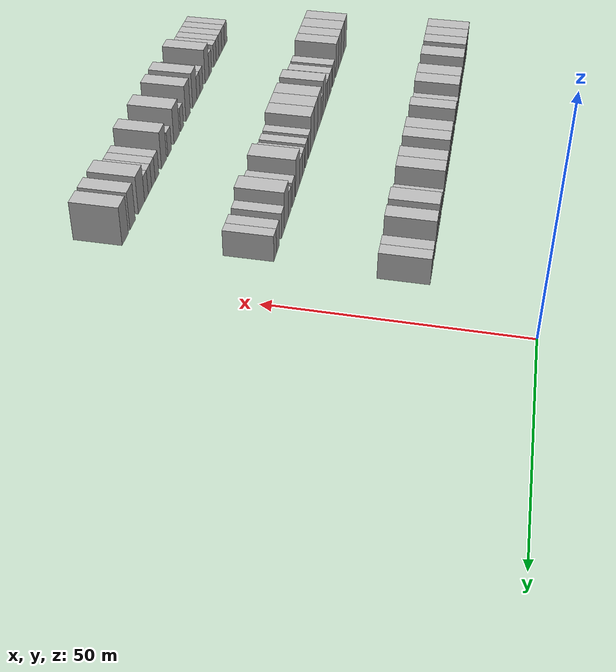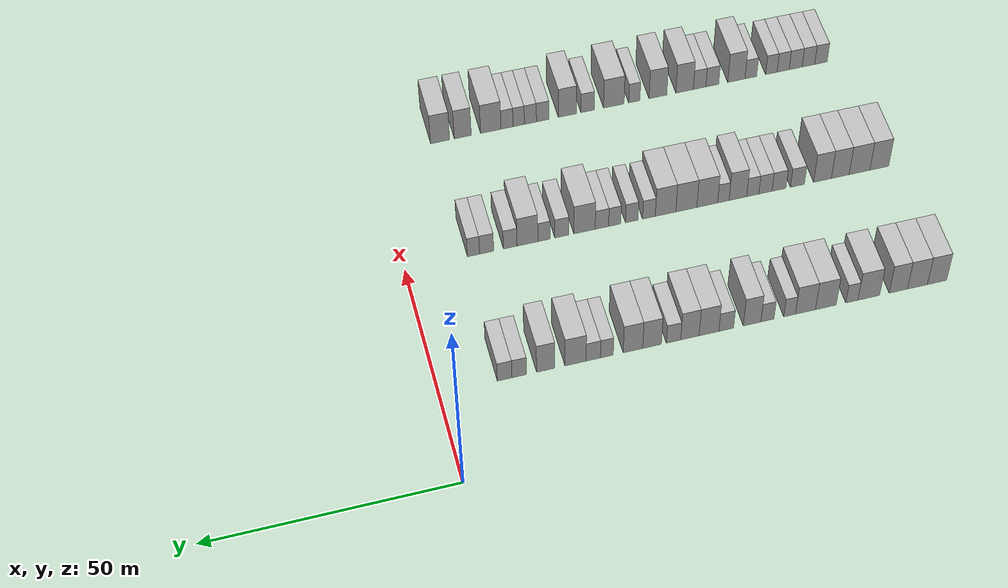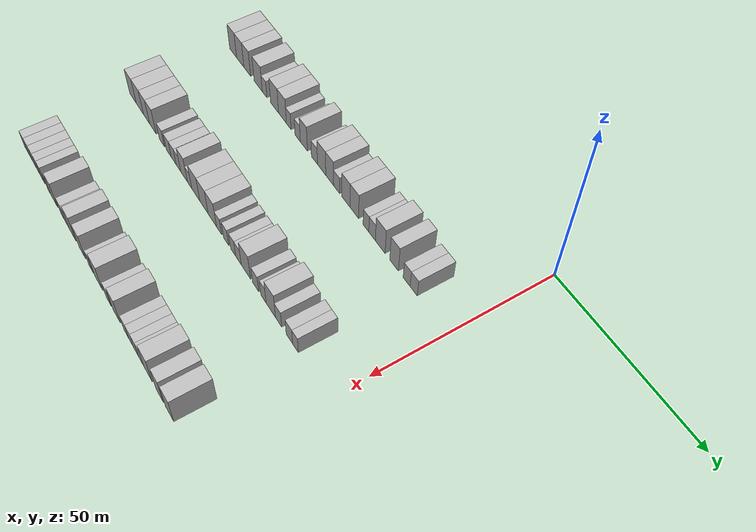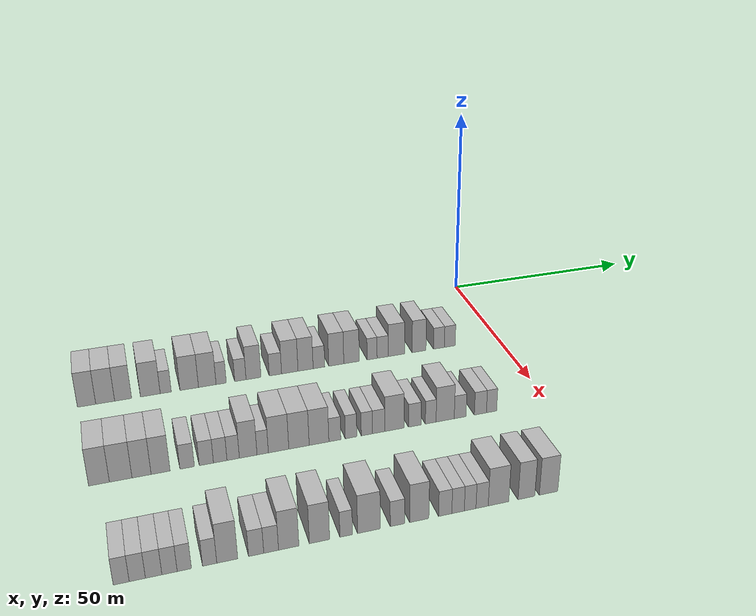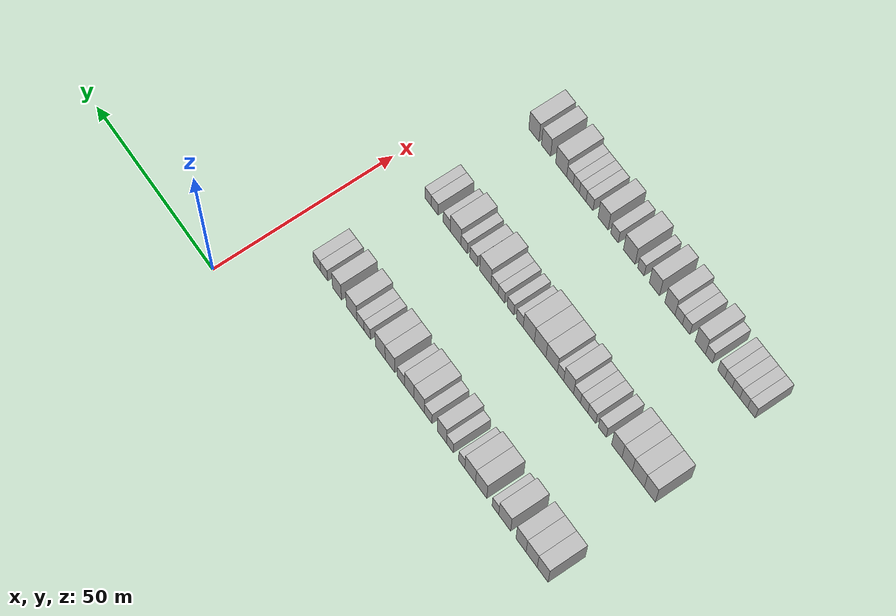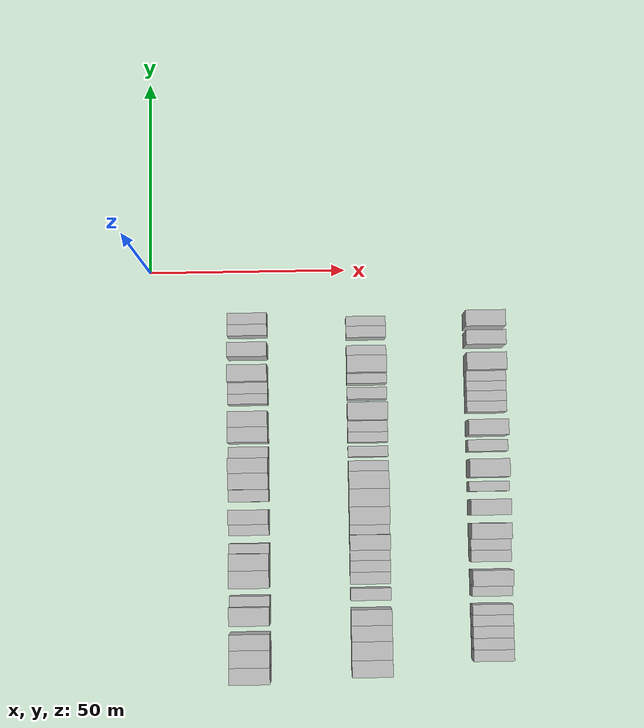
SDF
<sdf version="1.6">
 <world name="default">
  <model name="building_45">
   <static>1</static>
   <pose>25.0000 -101.2414 0 0.000000 0.000000 0.000000</pose>
   <link name="link">
    <pose>0 0 4.50 0 0 0</pose>
    <collision name="collision"><geometry><box><size>10.0000 4.0409 9.0000</size></box></geometry></collision>
    <visual name="visual">
     <cast_shadows>0</cast_shadows>
     <geometry><box><size>10.0000 4.0409 9.0000</size></box></geometry>
     <material>
      <script>
       <uri>model://HANNAS_wall/materials/scripts</uri>
       <uri>model://HANNAS_wall/materials/textures</uri>
       <name>vrc/HANNAS_wall</name>
      </script>
     </material>
    </visual>
   </link>
  </model>
  <model name="building_46">
   <static>1</static>
   <pose>25.0000 -97.1196 0 0.000000 0.000000 0.000000</pose>
   <link name="link">
    <pose>0 0 4.50 0 0 0</pose>
    <collision name="collision"><geometry><box><size>10.0000 4.2027 9.0000</size></box></geometry></collision>
    <visual name="visual">
     <cast_shadows>0</cast_shadows>
     <geometry><box><size>10.0000 4.2027 9.0000</size></box></geometry>
     <material>
      <script>
       <uri>model://HANNAS_wall/materials/scripts</uri>
       <uri>model://HANNAS_wall/materials/textures</uri>
       <name>vrc/HANNAS_wall</name>
      </script>
     </material>
    </visual>
   </link>
  </model>
  <model name="building_47">
   <static>1</static>
   <pose>25.0000 -93.1162 0 0.000000 0.000000 0.000000</pose>
   <link name="link">
    <pose>0 0 4.50 0 0 0</pose>
    <collision name="collision"><geometry><box><size>10.0000 3.8041 9.0000</size></box></geometry></collision>
    <visual name="visual">
     <cast_shadows>0</cast_shadows>
     <geometry><box><size>10.0000 3.8041 9.0000</size></box></geometry>
     <material>
      <script>
       <uri>model://HANNAS_wall/materials/scripts</uri>
       <uri>model://HANNAS_wall/materials/textures</uri>
       <name>vrc/HANNAS_wall</name>
      </script>
     </material>
    </visual>
   </link>
  </model>
  <model name="building_48">
   <static>1</static>
   <pose>25.0000 -86.9650 0 0.000000 0.000000 0.000000</pose>
   <link name="link">
    <pose>0 0 4.50 0 0 0</pose>
    <collision name="collision"><geometry><box><size>10.0000 4.4983 9.0000</size></box></geometry></collision>
    <visual name="visual">
     <cast_shadows>0</cast_shadows>
     <geometry><box><size>10.0000 4.4983 9.0000</size></box></geometry>
     <material>
      <script>
       <uri>model://HANNAS_wall/materials/scripts</uri>
       <uri>model://HANNAS_wall/materials/textures</uri>
       <name>vrc/HANNAS_wall</name>
      </script>
     </material>
    </visual>
   </link>
  </model>
  <model name="building_49">
   <static>1</static>
   <pose>25.0000 -83.4421 0 0.000000 0.000000 0.000000</pose>
   <link name="link">
    <pose>0 0 3.00 0 0 0</pose>
    <collision name="collision"><geometry><box><size>10.0000 2.5475 6.0000</size></box></geometry></collision>
    <visual name="visual">
     <cast_shadows>0</cast_shadows>
     <geometry><box><size>10.0000 2.5475 6.0000</size></box></geometry>
     <material>
      <script>
       <uri>model://HANNAS_wall/materials/scripts</uri>
       <uri>model://HANNAS_wall/materials/textures</uri>
       <name>vrc/HANNAS_wall</name>
      </script>
     </material>
    </visual>
   </link>
  </model>
  <model name="building_50">
   <static>1</static>
   <pose>25.0000 -78.0177 0 0.000000 0.000000 0.000000</pose>
   <link name="link">
    <pose>0 0 4.50 0 0 0</pose>
    <collision name="collision"><geometry><box><size>10.0000 4.3014 9.0000</size></box></geometry></collision>
    <visual name="visual">
     <cast_shadows>0</cast_shadows>
     <geometry><box><size>10.0000 4.3014 9.0000</size></box></geometry>
     <material>
      <script>
       <uri>model://HANNAS_wall/materials/scripts</uri>
       <uri>model://HANNAS_wall/materials/textures</uri>
       <name>vrc/HANNAS_wall</name>
      </script>
     </material>
    </visual>
   </link>
  </model>
  <model name="building_51">
   <static>1</static>
   <pose>25.0000 -73.8058 0 0.000000 0.000000 0.000000</pose>
   <link name="link">
    <pose>0 0 4.50 0 0 0</pose>
    <collision name="collision"><geometry><box><size>10.0000 4.1225 9.0000</size></box></geometry></collision>
    <visual name="visual">
     <cast_shadows>0</cast_shadows>
     <geometry><box><size>10.0000 4.1225 9.0000</size></box></geometry>
     <material>
      <script>
       <uri>model://HANNAS_wall/materials/scripts</uri>
       <uri>model://HANNAS_wall/materials/textures</uri>
       <name>vrc/HANNAS_wall</name>
      </script>
     </material>
    </visual>
   </link>
  </model>
  <model name="building_52">
   <static>1</static>
   <pose>25.0000 -70.5336 0 0.000000 0.000000 0.000000</pose>
   <link name="link">
    <pose>0 0 3.00 0 0 0</pose>
    <collision name="collision"><geometry><box><size>10.0000 2.4218 6.0000</size></box></geometry></collision>
    <visual name="visual">
     <cast_shadows>0</cast_shadows>
     <geometry><box><size>10.0000 2.4218 6.0000</size></box></geometry>
     <material>
      <script>
       <uri>model://HANNAS_wall/materials/scripts</uri>
       <uri>model://HANNAS_wall/materials/textures</uri>
       <name>vrc/HANNAS_wall</name>
      </script>
     </material>
    </visual>
   </link>
  </model>
  <model name="building_53">
   <static>1</static>
   <pose>25.0000 -65.9738 0 0.000000 0.000000 0.000000</pose>
   <link name="link">
    <pose>0 0 3.00 0 0 0</pose>
    <collision name="collision"><geometry><box><size>10.0000 2.6979 6.0000</size></box></geometry></collision>
    <visual name="visual">
     <cast_shadows>0</cast_shadows>
     <geometry><box><size>10.0000 2.6979 6.0000</size></box></geometry>
     <material>
      <script>
       <uri>model://HANNAS_wall/materials/scripts</uri>
       <uri>model://HANNAS_wall/materials/textures</uri>
       <name>vrc/HANNAS_wall</name>
      </script>
     </material>
    </visual>
   </link>
  </model>
  <model name="building_54">
   <static>1</static>
   <pose>25.0000 -62.8245 0 0.000000 0.000000 0.000000</pose>
   <link name="link">
    <pose>0 0 4.50 0 0 0</pose>
    <collision name="collision"><geometry><box><size>10.0000 3.6007 9.0000</size></box></geometry></collision>
    <visual name="visual">
     <cast_shadows>0</cast_shadows>
     <geometry><box><size>10.0000 3.6007 9.0000</size></box></geometry>
     <material>
      <script>
       <uri>model://HANNAS_wall/materials/scripts</uri>
       <uri>model://HANNAS_wall/materials/textures</uri>
       <name>vrc/HANNAS_wall</name>
      </script>
     </material>
    </visual>
   </link>
  </model>
  <model name="building_55">
   <static>1</static>
   <pose>25.0000 -57.5252 0 0.000000 0.000000 0.000000</pose>
   <link name="link">
    <pose>0 0 3.00 0 0 0</pose>
    <collision name="collision"><geometry><box><size>10.0000 2.9978 6.0000</size></box></geometry></collision>
    <visual name="visual">
     <cast_shadows>0</cast_shadows>
     <geometry><box><size>10.0000 2.9978 6.0000</size></box></geometry>
     <material>
      <script>
       <uri>model://HANNAS_wall/materials/scripts</uri>
       <uri>model://HANNAS_wall/materials/textures</uri>
       <name>vrc/HANNAS_wall</name>
      </script>
     </material>
    </visual>
   </link>
  </model>
  <model name="building_56">
   <static>1</static>
   <pose>25.0000 -54.0114 0 0.000000 0.000000 0.000000</pose>
   <link name="link">
    <pose>0 0 4.50 0 0 0</pose>
    <collision name="collision"><geometry><box><size>10.0000 4.0298 9.0000</size></box></geometry></collision>
    <visual name="visual">
     <cast_shadows>0</cast_shadows>
     <geometry><box><size>10.0000 4.0298 9.0000</size></box></geometry>
     <material>
      <script>
       <uri>model://HANNAS_wall/materials/scripts</uri>
       <uri>model://HANNAS_wall/materials/textures</uri>
       <name>vrc/HANNAS_wall</name>
      </script>
     </material>
    </visual>
   </link>
  </model>
  <model name="building_57">
   <static>1</static>
   <pose>25.0000 -50.1268 0 0.000000 0.000000 0.000000</pose>
   <link name="link">
    <pose>0 0 4.50 0 0 0</pose>
    <collision name="collision"><geometry><box><size>10.0000 3.7393 9.0000</size></box></geometry></collision>
    <visual name="visual">
     <cast_shadows>0</cast_shadows>
     <geometry><box><size>10.0000 3.7393 9.0000</size></box></geometry>
     <material>
      <script>
       <uri>model://HANNAS_wall/materials/scripts</uri>
       <uri>model://HANNAS_wall/materials/textures</uri>
       <name>vrc/HANNAS_wall</name>
      </script>
     </material>
    </visual>
   </link>
  </model>
  <model name="building_58">
   <static>1</static>
   <pose>25.0000 -46.8069 0 0.000000 0.000000 0.000000</pose>
   <link name="link">
    <pose>0 0 3.00 0 0 0</pose>
    <collision name="collision"><geometry><box><size>10.0000 2.9005 6.0000</size></box></geometry></collision>
    <visual name="visual">
     <cast_shadows>0</cast_shadows>
     <geometry><box><size>10.0000 2.9005 6.0000</size></box></geometry>
     <material>
      <script>
       <uri>model://HANNAS_wall/materials/scripts</uri>
       <uri>model://HANNAS_wall/materials/textures</uri>
       <name>vrc/HANNAS_wall</name>
      </script>
     </material>
    </visual>
   </link>
  </model>
  <model name="building_59">
   <static>1</static>
   <pose>25.0000 -42.4667 0 0.000000 0.000000 0.000000</pose>
   <link name="link">
    <pose>0 0 4.50 0 0 0</pose>
    <collision name="collision"><geometry><box><size>10.0000 3.7800 9.0000</size></box></geometry></collision>
    <visual name="visual">
     <cast_shadows>0</cast_shadows>
     <geometry><box><size>10.0000 3.7800 9.0000</size></box></geometry>
     <material>
      <script>
       <uri>model://HANNAS_wall/materials/scripts</uri>
       <uri>model://HANNAS_wall/materials/textures</uri>
       <name>vrc/HANNAS_wall</name>
      </script>
     </material>
    </visual>
   </link>
  </model>
  <model name="building_60">
   <static>1</static>
   <pose>25.0000 -38.6125 0 0.000000 0.000000 0.000000</pose>
   <link name="link">
    <pose>0 0 4.50 0 0 0</pose>
    <collision name="collision"><geometry><box><size>10.0000 3.9283 9.0000</size></box></geometry></collision>
    <visual name="visual">
     <cast_shadows>0</cast_shadows>
     <geometry><box><size>10.0000 3.9283 9.0000</size></box></geometry>
     <material>
      <script>
       <uri>model://HANNAS_wall/materials/scripts</uri>
       <uri>model://HANNAS_wall/materials/textures</uri>
       <name>vrc/HANNAS_wall</name>
      </script>
     </material>
    </visual>
   </link>
  </model>
  <model name="building_61">
   <static>1</static>
   <pose>25.0000 -33.3625 0 0.000000 0.000000 0.000000</pose>
   <link name="link">
    <pose>0 0 3.00 0 0 0</pose>
    <collision name="collision"><geometry><box><size>10.0000 2.5718 6.0000</size></box></geometry></collision>
    <visual name="visual">
     <cast_shadows>0</cast_shadows>
     <geometry><box><size>10.0000 2.5718 6.0000</size></box></geometry>
     <material>
      <script>
       <uri>model://HANNAS_wall/materials/scripts</uri>
       <uri>model://HANNAS_wall/materials/textures</uri>
       <name>vrc/HANNAS_wall</name>
      </script>
     </material>
    </visual>
   </link>
  </model>
  <model name="building_62">
   <static>1</static>
   <pose>25.0000 -30.6403 0 0.000000 0.000000 0.000000</pose>
   <link name="link">
    <pose>0 0 3.00 0 0 0</pose>
    <collision name="collision"><geometry><box><size>10.0000 2.8726 6.0000</size></box></geometry></collision>
    <visual name="visual">
     <cast_shadows>0</cast_shadows>
     <geometry><box><size>10.0000 2.8726 6.0000</size></box></geometry>
     <material>
      <script>
       <uri>model://HANNAS_wall/materials/scripts</uri>
       <uri>model://HANNAS_wall/materials/textures</uri>
       <name>vrc/HANNAS_wall</name>
      </script>
     </material>
    </visual>
   </link>
  </model>
  <model name="building_63">
   <static>1</static>
   <pose>25.0000 -27.0936 0 0.000000 0.000000 0.000000</pose>
   <link name="link">
    <pose>0 0 4.50 0 0 0</pose>
    <collision name="collision"><geometry><box><size>10.0000 4.2208 9.0000</size></box></geometry></collision>
    <visual name="visual">
     <cast_shadows>0</cast_shadows>
     <geometry><box><size>10.0000 4.2208 9.0000</size></box></geometry>
     <material>
      <script>
       <uri>model://HANNAS_wall/materials/scripts</uri>
       <uri>model://HANNAS_wall/materials/textures</uri>
       <name>vrc/HANNAS_wall</name>
      </script>
     </material>
    </visual>
   </link>
  </model>
  <model name="building_64">
   <static>1</static>
   <pose>25.0000 -21.1569 0 0.000000 0.000000 0.000000</pose>
   <link name="link">
    <pose>0 0 4.50 0 0 0</pose>
    <collision name="collision"><geometry><box><size>10.0000 3.6526 9.0000</size></box></geometry></collision>
    <visual name="visual">
     <cast_shadows>0</cast_shadows>
     <geometry><box><size>10.0000 3.6526 9.0000</size></box></geometry>
     <material>
      <script>
       <uri>model://HANNAS_wall/materials/scripts</uri>
       <uri>model://HANNAS_wall/materials/textures</uri>
       <name>vrc/HANNAS_wall</name>
      </script>
     </material>
    </visual>
   </link>
  </model>
  <model name="building_65">
   <static>1</static>
   <pose>25.0000 -15.8919 0 0.000000 0.000000 0.000000</pose>
   <link name="link">
    <pose>0 0 3.00 0 0 0</pose>
    <collision name="collision"><geometry><box><size>10.0000 2.8774 6.0000</size></box></geometry></collision>
    <visual name="visual">
     <cast_shadows>0</cast_shadows>
     <geometry><box><size>10.0000 2.8774 6.0000</size></box></geometry>
     <material>
      <script>
       <uri>model://HANNAS_wall/materials/scripts</uri>
       <uri>model://HANNAS_wall/materials/textures</uri>
       <name>vrc/HANNAS_wall</name>
      </script>
     </material>
    </visual>
   </link>
  </model>
  <model name="building_66">
   <static>1</static>
   <pose>25.0000 -13.0034 0 0.000000 0.000000 0.000000</pose>
   <link name="link">
    <pose>0 0 3.00 0 0 0</pose>
    <collision name="collision"><geometry><box><size>10.0000 2.8995 6.0000</size></box></geometry></collision>
    <visual name="visual">
     <cast_shadows>0</cast_shadows>
     <geometry><box><size>10.0000 2.8995 6.0000</size></box></geometry>
     <material>
      <script>
       <uri>model://HANNAS_wall/materials/scripts</uri>
       <uri>model://HANNAS_wall/materials/textures</uri>
       <name>vrc/HANNAS_wall</name>
      </script>
     </material>
    </visual>
   </link>
  </model>
  <model name="building_182">
   <static>1</static>
   <pose>55.0000 -99.9160 0 0.000000 0.000000 0.000000</pose>
   <link name="link">
    <pose>0 0 4.50 0 0 0</pose>
    <collision name="collision"><geometry><box><size>10.0000 4.0914 9.0000</size></box></geometry></collision>
    <visual name="visual">
     <cast_shadows>0</cast_shadows>
     <geometry><box><size>10.0000 4.0914 9.0000</size></box></geometry>
     <material>
      <script>
       <uri>model://HANNAS_wall/materials/scripts</uri>
       <uri>model://HANNAS_wall/materials/textures</uri>
       <name>vrc/HANNAS_wall</name>
      </script>
     </material>
    </visual>
   </link>
  </model>
  <model name="building_183">
   <static>1</static>
   <pose>55.0000 -95.6231 0 0.000000 0.000000 0.000000</pose>
   <link name="link">
    <pose>0 0 4.50 0 0 0</pose>
    <collision name="collision"><geometry><box><size>10.0000 4.4944 9.0000</size></box></geometry></collision>
    <visual name="visual">
     <cast_shadows>0</cast_shadows>
     <geometry><box><size>10.0000 4.4944 9.0000</size></box></geometry>
     <material>
      <script>
       <uri>model://HANNAS_wall/materials/scripts</uri>
       <uri>model://HANNAS_wall/materials/textures</uri>
       <name>vrc/HANNAS_wall</name>
      </script>
     </material>
    </visual>
   </link>
  </model>
  <model name="building_184">
   <static>1</static>
   <pose>55.0000 -91.4590 0 0.000000 0.000000 0.000000</pose>
   <link name="link">
    <pose>0 0 4.50 0 0 0</pose>
    <collision name="collision"><geometry><box><size>10.0000 3.8339 9.0000</size></box></geometry></collision>
    <visual name="visual">
     <cast_shadows>0</cast_shadows>
     <geometry><box><size>10.0000 3.8339 9.0000</size></box></geometry>
     <material>
      <script>
       <uri>model://HANNAS_wall/materials/scripts</uri>
       <uri>model://HANNAS_wall/materials/textures</uri>
       <name>vrc/HANNAS_wall</name>
      </script>
     </material>
    </visual>
   </link>
  </model>
  <model name="building_185">
   <static>1</static>
   <pose>55.0000 -87.6162 0 0.000000 0.000000 0.000000</pose>
   <link name="link">
    <pose>0 0 4.50 0 0 0</pose>
    <collision name="collision"><geometry><box><size>10.0000 3.8517 9.0000</size></box></geometry></collision>
    <visual name="visual">
     <cast_shadows>0</cast_shadows>
     <geometry><box><size>10.0000 3.8517 9.0000</size></box></geometry>
     <material>
      <script>
       <uri>model://HANNAS_wall/materials/scripts</uri>
       <uri>model://HANNAS_wall/materials/textures</uri>
       <name>vrc/HANNAS_wall</name>
      </script>
     </material>
    </visual>
   </link>
  </model>
  <model name="building_186">
   <static>1</static>
   <pose>55.0000 -82.1968 0 0.000000 0.000000 0.000000</pose>
   <link name="link">
    <pose>0 0 3.00 0 0 0</pose>
    <collision name="collision"><geometry><box><size>10.0000 2.9871 6.0000</size></box></geometry></collision>
    <visual name="visual">
     <cast_shadows>0</cast_shadows>
     <geometry><box><size>10.0000 2.9871 6.0000</size></box></geometry>
     <material>
      <script>
       <uri>model://HANNAS_wall/materials/scripts</uri>
       <uri>model://HANNAS_wall/materials/textures</uri>
       <name>vrc/HANNAS_wall</name>
      </script>
     </material>
    </visual>
   </link>
  </model>
  <model name="building_187">
   <static>1</static>
   <pose>55.0000 -78.2285 0 0.000000 0.000000 0.000000</pose>
   <link name="link">
    <pose>0 0 3.00 0 0 0</pose>
    <collision name="collision"><geometry><box><size>10.0000 2.9494 6.0000</size></box></geometry></collision>
    <visual name="visual">
     <cast_shadows>0</cast_shadows>
     <geometry><box><size>10.0000 2.9494 6.0000</size></box></geometry>
     <material>
      <script>
       <uri>model://HANNAS_wall/materials/scripts</uri>
       <uri>model://HANNAS_wall/materials/textures</uri>
       <name>vrc/HANNAS_wall</name>
      </script>
     </material>
    </visual>
   </link>
  </model>
  <model name="building_188">
   <static>1</static>
   <pose>55.0000 -75.3353 0 0.000000 0.000000 0.000000</pose>
   <link name="link">
    <pose>0 0 3.00 0 0 0</pose>
    <collision name="collision"><geometry><box><size>10.0000 2.8370 6.0000</size></box></geometry></collision>
    <visual name="visual">
     <cast_shadows>0</cast_shadows>
     <geometry><box><size>10.0000 2.8370 6.0000</size></box></geometry>
     <material>
      <script>
       <uri>model://HANNAS_wall/materials/scripts</uri>
       <uri>model://HANNAS_wall/materials/textures</uri>
       <name>vrc/HANNAS_wall</name>
      </script>
     </material>
    </visual>
   </link>
  </model>
  <model name="building_189">
   <static>1</static>
   <pose>55.0000 -72.6126 0 0.000000 0.000000 0.000000</pose>
   <link name="link">
    <pose>0 0 3.00 0 0 0</pose>
    <collision name="collision"><geometry><box><size>10.0000 2.6085 6.0000</size></box></geometry></collision>
    <visual name="visual">
     <cast_shadows>0</cast_shadows>
     <geometry><box><size>10.0000 2.6085 6.0000</size></box></geometry>
     <material>
      <script>
       <uri>model://HANNAS_wall/materials/scripts</uri>
       <uri>model://HANNAS_wall/materials/textures</uri>
       <name>vrc/HANNAS_wall</name>
      </script>
     </material>
    </visual>
   </link>
  </model>
  <model name="building_190">
   <static>1</static>
   <pose>55.0000 -69.4304 0 0.000000 0.000000 0.000000</pose>
   <link name="link">
    <pose>0 0 4.50 0 0 0</pose>
    <collision name="collision"><geometry><box><size>10.0000 3.7558 9.0000</size></box></geometry></collision>
    <visual name="visual">
     <cast_shadows>0</cast_shadows>
     <geometry><box><size>10.0000 3.7558 9.0000</size></box></geometry>
     <material>
      <script>
       <uri>model://HANNAS_wall/materials/scripts</uri>
       <uri>model://HANNAS_wall/materials/textures</uri>
       <name>vrc/HANNAS_wall</name>
      </script>
     </material>
    </visual>
   </link>
  </model>
  <model name="building_191">
   <static>1</static>
   <pose>55.0000 -66.3375 0 0.000000 0.000000 0.000000</pose>
   <link name="link">
    <pose>0 0 3.00 0 0 0</pose>
    <collision name="collision"><geometry><box><size>10.0000 2.4302 6.0000</size></box></geometry></collision>
    <visual name="visual">
     <cast_shadows>0</cast_shadows>
     <geometry><box><size>10.0000 2.4302 6.0000</size></box></geometry>
     <material>
      <script>
       <uri>model://HANNAS_wall/materials/scripts</uri>
       <uri>model://HANNAS_wall/materials/textures</uri>
       <name>vrc/HANNAS_wall</name>
      </script>
     </material>
    </visual>
   </link>
  </model>
  <model name="building_192">
   <static>1</static>
   <pose>55.0000 -62.9135 0 0.000000 0.000000 0.000000</pose>
   <link name="link">
    <pose>0 0 4.50 0 0 0</pose>
    <collision name="collision"><geometry><box><size>10.0000 4.4177 9.0000</size></box></geometry></collision>
    <visual name="visual">
     <cast_shadows>0</cast_shadows>
     <geometry><box><size>10.0000 4.4177 9.0000</size></box></geometry>
     <material>
      <script>
       <uri>model://HANNAS_wall/materials/scripts</uri>
       <uri>model://HANNAS_wall/materials/textures</uri>
       <name>vrc/HANNAS_wall</name>
      </script>
     </material>
    </visual>
   </link>
  </model>
  <model name="building_193">
   <static>1</static>
   <pose>55.0000 -58.4822 0 0.000000 0.000000 0.000000</pose>
   <link name="link">
    <pose>0 0 4.50 0 0 0</pose>
    <collision name="collision"><geometry><box><size>10.0000 4.4450 9.0000</size></box></geometry></collision>
    <visual name="visual">
     <cast_shadows>0</cast_shadows>
     <geometry><box><size>10.0000 4.4450 9.0000</size></box></geometry>
     <material>
      <script>
       <uri>model://HANNAS_wall/materials/scripts</uri>
       <uri>model://HANNAS_wall/materials/textures</uri>
       <name>vrc/HANNAS_wall</name>
      </script>
     </material>
    </visual>
   </link>
  </model>
  <model name="building_194">
   <static>1</static>
   <pose>55.0000 -54.0834 0 0.000000 0.000000 0.000000</pose>
   <link name="link">
    <pose>0 0 4.50 0 0 0</pose>
    <collision name="collision"><geometry><box><size>10.0000 4.3526 9.0000</size></box></geometry></collision>
    <visual name="visual">
     <cast_shadows>0</cast_shadows>
     <geometry><box><size>10.0000 4.3526 9.0000</size></box></geometry>
     <material>
      <script>
       <uri>model://HANNAS_wall/materials/scripts</uri>
       <uri>model://HANNAS_wall/materials/textures</uri>
       <name>vrc/HANNAS_wall</name>
      </script>
     </material>
    </visual>
   </link>
  </model>
  <model name="building_195">
   <static>1</static>
   <pose>55.0000 -50.5775 0 0.000000 0.000000 0.000000</pose>
   <link name="link">
    <pose>0 0 3.00 0 0 0</pose>
    <collision name="collision"><geometry><box><size>10.0000 2.6592 6.0000</size></box></geometry></collision>
    <visual name="visual">
     <cast_shadows>0</cast_shadows>
     <geometry><box><size>10.0000 2.6592 6.0000</size></box></geometry>
     <material>
      <script>
       <uri>model://HANNAS_wall/materials/scripts</uri>
       <uri>model://HANNAS_wall/materials/textures</uri>
       <name>vrc/HANNAS_wall</name>
      </script>
     </material>
    </visual>
   </link>
  </model>
  <model name="building_196">
   <static>1</static>
   <pose>55.0000 -46.9460 0 0.000000 0.000000 0.000000</pose>
   <link name="link">
    <pose>0 0 3.00 0 0 0</pose>
    <collision name="collision"><geometry><box><size>10.0000 2.6039 6.0000</size></box></geometry></collision>
    <visual name="visual">
     <cast_shadows>0</cast_shadows>
     <geometry><box><size>10.0000 2.6039 6.0000</size></box></geometry>
     <material>
      <script>
       <uri>model://HANNAS_wall/materials/scripts</uri>
       <uri>model://HANNAS_wall/materials/textures</uri>
       <name>vrc/HANNAS_wall</name>
      </script>
     </material>
    </visual>
   </link>
  </model>
  <model name="building_197">
   <static>1</static>
   <pose>55.0000 -43.3728 0 0.000000 0.000000 0.000000</pose>
   <link name="link">
    <pose>0 0 3.00 0 0 0</pose>
    <collision name="collision"><geometry><box><size>10.0000 2.5424 6.0000</size></box></geometry></collision>
    <visual name="visual">
     <cast_shadows>0</cast_shadows>
     <geometry><box><size>10.0000 2.5424 6.0000</size></box></geometry>
     <material>
      <script>
       <uri>model://HANNAS_wall/materials/scripts</uri>
       <uri>model://HANNAS_wall/materials/textures</uri>
       <name>vrc/HANNAS_wall</name>
      </script>
     </material>
    </visual>
   </link>
  </model>
  <model name="building_198">
   <static>1</static>
   <pose>55.0000 -40.7019 0 0.000000 0.000000 0.000000</pose>
   <link name="link">
    <pose>0 0 3.00 0 0 0</pose>
    <collision name="collision"><geometry><box><size>10.0000 2.7993 6.0000</size></box></geometry></collision>
    <visual name="visual">
     <cast_shadows>0</cast_shadows>
     <geometry><box><size>10.0000 2.7993 6.0000</size></box></geometry>
     <material>
      <script>
       <uri>model://HANNAS_wall/materials/scripts</uri>
       <uri>model://HANNAS_wall/materials/textures</uri>
       <name>vrc/HANNAS_wall</name>
      </script>
     </material>
    </visual>
   </link>
  </model>
  <model name="building_199">
   <static>1</static>
   <pose>55.0000 -37.0660 0 0.000000 0.000000 0.000000</pose>
   <link name="link">
    <pose>0 0 4.50 0 0 0</pose>
    <collision name="collision"><geometry><box><size>10.0000 4.4726 9.0000</size></box></geometry></collision>
    <visual name="visual">
     <cast_shadows>0</cast_shadows>
     <geometry><box><size>10.0000 4.4726 9.0000</size></box></geometry>
     <material>
      <script>
       <uri>model://HANNAS_wall/materials/scripts</uri>
       <uri>model://HANNAS_wall/materials/textures</uri>
       <name>vrc/HANNAS_wall</name>
      </script>
     </material>
    </visual>
   </link>
  </model>
  <model name="building_200">
   <static>1</static>
   <pose>55.0000 -32.3639 0 0.000000 0.000000 0.000000</pose>
   <link name="link">
    <pose>0 0 3.00 0 0 0</pose>
    <collision name="collision"><geometry><box><size>10.0000 2.9314 6.0000</size></box></geometry></collision>
    <visual name="visual">
     <cast_shadows>0</cast_shadows>
     <geometry><box><size>10.0000 2.9314 6.0000</size></box></geometry>
     <material>
      <script>
       <uri>model://HANNAS_wall/materials/scripts</uri>
       <uri>model://HANNAS_wall/materials/textures</uri>
       <name>vrc/HANNAS_wall</name>
      </script>
     </material>
    </visual>
   </link>
  </model>
  <model name="building_201">
   <static>1</static>
   <pose>55.0000 -28.6361 0 0.000000 0.000000 0.000000</pose>
   <link name="link">
    <pose>0 0 3.00 0 0 0</pose>
    <collision name="collision"><geometry><box><size>10.0000 2.5243 6.0000</size></box></geometry></collision>
    <visual name="visual">
     <cast_shadows>0</cast_shadows>
     <geometry><box><size>10.0000 2.5243 6.0000</size></box></geometry>
     <material>
      <script>
       <uri>model://HANNAS_wall/materials/scripts</uri>
       <uri>model://HANNAS_wall/materials/textures</uri>
       <name>vrc/HANNAS_wall</name>
      </script>
     </material>
    </visual>
   </link>
  </model>
  <model name="building_202">
   <static>1</static>
   <pose>55.0000 -25.2213 0 0.000000 0.000000 0.000000</pose>
   <link name="link">
    <pose>0 0 4.50 0 0 0</pose>
    <collision name="collision"><geometry><box><size>10.0000 4.3053 9.0000</size></box></geometry></collision>
    <visual name="visual">
     <cast_shadows>0</cast_shadows>
     <geometry><box><size>10.0000 4.3053 9.0000</size></box></geometry>
     <material>
      <script>
       <uri>model://HANNAS_wall/materials/scripts</uri>
       <uri>model://HANNAS_wall/materials/textures</uri>
       <name>vrc/HANNAS_wall</name>
      </script>
     </material>
    </visual>
   </link>
  </model>
  <model name="building_203">
   <static>1</static>
   <pose>55.0000 -21.6575 0 0.000000 0.000000 0.000000</pose>
   <link name="link">
    <pose>0 0 3.00 0 0 0</pose>
    <collision name="collision"><geometry><box><size>10.0000 2.8222 6.0000</size></box></geometry></collision>
    <visual name="visual">
     <cast_shadows>0</cast_shadows>
     <geometry><box><size>10.0000 2.8222 6.0000</size></box></geometry>
     <material>
      <script>
       <uri>model://HANNAS_wall/materials/scripts</uri>
       <uri>model://HANNAS_wall/materials/textures</uri>
       <name>vrc/HANNAS_wall</name>
      </script>
     </material>
    </visual>
   </link>
  </model>
  <model name="building_204">
   <static>1</static>
   <pose>55.0000 -16.7884 0 0.000000 0.000000 0.000000</pose>
   <link name="link">
    <pose>0 0 3.00 0 0 0</pose>
    <collision name="collision"><geometry><box><size>10.0000 2.9160 6.0000</size></box></geometry></collision>
    <visual name="visual">
     <cast_shadows>0</cast_shadows>
     <geometry><box><size>10.0000 2.9160 6.0000</size></box></geometry>
     <material>
      <script>
       <uri>model://HANNAS_wall/materials/scripts</uri>
       <uri>model://HANNAS_wall/materials/textures</uri>
       <name>vrc/HANNAS_wall</name>
      </script>
     </material>
    </visual>
   </link>
  </model>
  <model name="building_205">
   <static>1</static>
   <pose>55.0000 -14.0848 0 0.000000 0.000000 0.000000</pose>
   <link name="link">
    <pose>0 0 3.00 0 0 0</pose>
    <collision name="collision"><geometry><box><size>10.0000 2.4913 6.0000</size></box></geometry></collision>
    <visual name="visual">
     <cast_shadows>0</cast_shadows>
     <geometry><box><size>10.0000 2.4913 6.0000</size></box></geometry>
     <material>
      <script>
       <uri>model://HANNAS_wall/materials/scripts</uri>
       <uri>model://HANNAS_wall/materials/textures</uri>
       <name>vrc/HANNAS_wall</name>
      </script>
     </material>
    </visual>
   </link>
  </model>
  <model name="building_318">
   <static>1</static>
   <pose>85.0000 -97.5186 0 0.000000 0.000000 0.000000</pose>
   <link name="link">
    <pose>0 0 3.00 0 0 0</pose>
    <collision name="collision"><geometry><box><size>10.0000 2.7775 6.0000</size></box></geometry></collision>
    <visual name="visual">
     <cast_shadows>0</cast_shadows>
     <geometry><box><size>10.0000 2.7775 6.0000</size></box></geometry>
     <material>
      <script>
       <uri>model://HANNAS_wall/materials/scripts</uri>
       <uri>model://HANNAS_wall/materials/textures</uri>
       <name>vrc/HANNAS_wall</name>
      </script>
     </material>
    </visual>
   </link>
  </model>
  <model name="building_319">
   <static>1</static>
   <pose>85.0000 -94.7141 0 0.000000 0.000000 0.000000</pose>
   <link name="link">
    <pose>0 0 3.00 0 0 0</pose>
    <collision name="collision"><geometry><box><size>10.0000 2.8316 6.0000</size></box></geometry></collision>
    <visual name="visual">
     <cast_shadows>0</cast_shadows>
     <geometry><box><size>10.0000 2.8316 6.0000</size></box></geometry>
     <material>
      <script>
       <uri>model://HANNAS_wall/materials/scripts</uri>
       <uri>model://HANNAS_wall/materials/textures</uri>
       <name>vrc/HANNAS_wall</name>
      </script>
     </material>
    </visual>
   </link>
  </model>
  <model name="building_320">
   <static>1</static>
   <pose>85.0000 -91.8470 0 0.000000 0.000000 0.000000</pose>
   <link name="link">
    <pose>0 0 3.00 0 0 0</pose>
    <collision name="collision"><geometry><box><size>10.0000 2.9025 6.0000</size></box></geometry></collision>
    <visual name="visual">
     <cast_shadows>0</cast_shadows>
     <geometry><box><size>10.0000 2.9025 6.0000</size></box></geometry>
     <material>
      <script>
       <uri>model://HANNAS_wall/materials/scripts</uri>
       <uri>model://HANNAS_wall/materials/textures</uri>
       <name>vrc/HANNAS_wall</name>
      </script>
     </material>
    </visual>
   </link>
  </model>
  <model name="building_321">
   <static>1</static>
   <pose>85.0000 -89.0371 0 0.000000 0.000000 0.000000</pose>
   <link name="link">
    <pose>0 0 3.00 0 0 0</pose>
    <collision name="collision"><geometry><box><size>10.0000 2.7173 6.0000</size></box></geometry></collision>
    <visual name="visual">
     <cast_shadows>0</cast_shadows>
     <geometry><box><size>10.0000 2.7173 6.0000</size></box></geometry>
     <material>
      <script>
       <uri>model://HANNAS_wall/materials/scripts</uri>
       <uri>model://HANNAS_wall/materials/textures</uri>
       <name>vrc/HANNAS_wall</name>
      </script>
     </material>
    </visual>
   </link>
  </model>
  <model name="building_322">
   <static>1</static>
   <pose>85.0000 -86.4007 0 0.000000 0.000000 0.000000</pose>
   <link name="link">
    <pose>0 0 3.00 0 0 0</pose>
    <collision name="collision"><geometry><box><size>10.0000 2.5555 6.0000</size></box></geometry></collision>
    <visual name="visual">
     <cast_shadows>0</cast_shadows>
     <geometry><box><size>10.0000 2.5555 6.0000</size></box></geometry>
     <material>
      <script>
       <uri>model://HANNAS_wall/materials/scripts</uri>
       <uri>model://HANNAS_wall/materials/textures</uri>
       <name>vrc/HANNAS_wall</name>
      </script>
     </material>
    </visual>
   </link>
  </model>
  <model name="building_323">
   <static>1</static>
   <pose>85.0000 -81.8279 0 0.000000 0.000000 0.000000</pose>
   <link name="link">
    <pose>0 0 3.00 0 0 0</pose>
    <collision name="collision"><geometry><box><size>10.0000 2.5901 6.0000</size></box></geometry></collision>
    <visual name="visual">
     <cast_shadows>0</cast_shadows>
     <geometry><box><size>10.0000 2.5901 6.0000</size></box></geometry>
     <material>
      <script>
       <uri>model://HANNAS_wall/materials/scripts</uri>
       <uri>model://HANNAS_wall/materials/textures</uri>
       <name>vrc/HANNAS_wall</name>
      </script>
     </material>
    </visual>
   </link>
  </model>
  <model name="building_324">
   <static>1</static>
   <pose>85.0000 -78.6123 0 0.000000 0.000000 0.000000</pose>
   <link name="link">
    <pose>0 0 4.50 0 0 0</pose>
    <collision name="collision"><geometry><box><size>10.0000 3.8412 9.0000</size></box></geometry></collision>
    <visual name="visual">
     <cast_shadows>0</cast_shadows>
     <geometry><box><size>10.0000 3.8412 9.0000</size></box></geometry>
     <material>
      <script>
       <uri>model://HANNAS_wall/materials/scripts</uri>
       <uri>model://HANNAS_wall/materials/textures</uri>
       <name>vrc/HANNAS_wall</name>
      </script>
     </material>
    </visual>
   </link>
  </model>
  <model name="building_325">
   <static>1</static>
   <pose>85.0000 -73.2812 0 0.000000 0.000000 0.000000</pose>
   <link name="link">
    <pose>0 0 3.00 0 0 0</pose>
    <collision name="collision"><geometry><box><size>10.0000 2.8209 6.0000</size></box></geometry></collision>
    <visual name="visual">
     <cast_shadows>0</cast_shadows>
     <geometry><box><size>10.0000 2.8209 6.0000</size></box></geometry>
     <material>
      <script>
       <uri>model://HANNAS_wall/materials/scripts</uri>
       <uri>model://HANNAS_wall/materials/textures</uri>
       <name>vrc/HANNAS_wall</name>
      </script>
     </material>
    </visual>
   </link>
  </model>
  <model name="building_326">
   <static>1</static>
   <pose>85.0000 -70.4814 0 0.000000 0.000000 0.000000</pose>
   <link name="link">
    <pose>0 0 3.00 0 0 0</pose>
    <collision name="collision"><geometry><box><size>10.0000 2.7788 6.0000</size></box></geometry></collision>
    <visual name="visual">
     <cast_shadows>0</cast_shadows>
     <geometry><box><size>10.0000 2.7788 6.0000</size></box></geometry>
     <material>
      <script>
       <uri>model://HANNAS_wall/materials/scripts</uri>
       <uri>model://HANNAS_wall/materials/textures</uri>
       <name>vrc/HANNAS_wall</name>
      </script>
     </material>
    </visual>
   </link>
  </model>
  <model name="building_327">
   <static>1</static>
   <pose>85.0000 -67.1625 0 0.000000 0.000000 0.000000</pose>
   <link name="link">
    <pose>0 0 4.50 0 0 0</pose>
    <collision name="collision"><geometry><box><size>10.0000 3.8589 9.0000</size></box></geometry></collision>
    <visual name="visual">
     <cast_shadows>0</cast_shadows>
     <geometry><box><size>10.0000 3.8589 9.0000</size></box></geometry>
     <material>
      <script>
       <uri>model://HANNAS_wall/materials/scripts</uri>
       <uri>model://HANNAS_wall/materials/textures</uri>
       <name>vrc/HANNAS_wall</name>
      </script>
     </material>
    </visual>
   </link>
  </model>
  <model name="building_328">
   <static>1</static>
   <pose>85.0000 -61.2829 0 0.000000 0.000000 0.000000</pose>
   <link name="link">
    <pose>0 0 4.50 0 0 0</pose>
    <collision name="collision"><geometry><box><size>10.0000 3.9003 9.0000</size></box></geometry></collision>
    <visual name="visual">
     <cast_shadows>0</cast_shadows>
     <geometry><box><size>10.0000 3.9003 9.0000</size></box></geometry>
     <material>
      <script>
       <uri>model://HANNAS_wall/materials/scripts</uri>
       <uri>model://HANNAS_wall/materials/textures</uri>
       <name>vrc/HANNAS_wall</name>
      </script>
     </material>
    </visual>
   </link>
  </model>
  <model name="building_329">
   <static>1</static>
   <pose>85.0000 -56.1045 0 0.000000 0.000000 0.000000</pose>
   <link name="link">
    <pose>0 0 3.00 0 0 0</pose>
    <collision name="collision"><geometry><box><size>10.0000 2.4567 6.0000</size></box></geometry></collision>
    <visual name="visual">
     <cast_shadows>0</cast_shadows>
     <geometry><box><size>10.0000 2.4567 6.0000</size></box></geometry>
     <material>
      <script>
       <uri>model://HANNAS_wall/materials/scripts</uri>
       <uri>model://HANNAS_wall/materials/textures</uri>
       <name>vrc/HANNAS_wall</name>
      </script>
     </material>
    </visual>
   </link>
  </model>
  <model name="building_330">
   <static>1</static>
   <pose>85.0000 -51.6349 0 0.000000 0.000000 0.000000</pose>
   <link name="link">
    <pose>0 0 4.50 0 0 0</pose>
    <collision name="collision"><geometry><box><size>10.0000 4.4824 9.0000</size></box></geometry></collision>
    <visual name="visual">
     <cast_shadows>0</cast_shadows>
     <geometry><box><size>10.0000 4.4824 9.0000</size></box></geometry>
     <material>
      <script>
       <uri>model://HANNAS_wall/materials/scripts</uri>
       <uri>model://HANNAS_wall/materials/textures</uri>
       <name>vrc/HANNAS_wall</name>
      </script>
     </material>
    </visual>
   </link>
  </model>
  <model name="building_331">
   <static>1</static>
   <pose>85.0000 -45.9359 0 0.000000 0.000000 0.000000</pose>
   <link name="link">
    <pose>0 0 3.00 0 0 0</pose>
    <collision name="collision"><geometry><box><size>10.0000 2.9157 6.0000</size></box></geometry></collision>
    <visual name="visual">
     <cast_shadows>0</cast_shadows>
     <geometry><box><size>10.0000 2.9157 6.0000</size></box></geometry>
     <material>
      <script>
       <uri>model://HANNAS_wall/materials/scripts</uri>
       <uri>model://HANNAS_wall/materials/textures</uri>
       <name>vrc/HANNAS_wall</name>
      </script>
     </material>
    </visual>
   </link>
  </model>
  <model name="building_332">
   <static>1</static>
   <pose>85.0000 -41.5234 0 0.000000 0.000000 0.000000</pose>
   <link name="link">
    <pose>0 0 4.50 0 0 0</pose>
    <collision name="collision"><geometry><box><size>10.0000 3.9092 9.0000</size></box></geometry></collision>
    <visual name="visual">
     <cast_shadows>0</cast_shadows>
     <geometry><box><size>10.0000 3.9092 9.0000</size></box></geometry>
     <material>
      <script>
       <uri>model://HANNAS_wall/materials/scripts</uri>
       <uri>model://HANNAS_wall/materials/textures</uri>
       <name>vrc/HANNAS_wall</name>
      </script>
     </material>
    </visual>
   </link>
  </model>
  <model name="building_333">
   <static>1</static>
   <pose>85.0000 -36.2038 0 0.000000 0.000000 0.000000</pose>
   <link name="link">
    <pose>0 0 3.00 0 0 0</pose>
    <collision name="collision"><geometry><box><size>10.0000 2.7300 6.0000</size></box></geometry></collision>
    <visual name="visual">
     <cast_shadows>0</cast_shadows>
     <geometry><box><size>10.0000 2.7300 6.0000</size></box></geometry>
     <material>
      <script>
       <uri>model://HANNAS_wall/materials/scripts</uri>
       <uri>model://HANNAS_wall/materials/textures</uri>
       <name>vrc/HANNAS_wall</name>
      </script>
     </material>
    </visual>
   </link>
  </model>
  <model name="building_334">
   <static>1</static>
   <pose>85.0000 -33.5365 0 0.000000 0.000000 0.000000</pose>
   <link name="link">
    <pose>0 0 3.00 0 0 0</pose>
    <collision name="collision"><geometry><box><size>10.0000 2.6047 6.0000</size></box></geometry></collision>
    <visual name="visual">
     <cast_shadows>0</cast_shadows>
     <geometry><box><size>10.0000 2.6047 6.0000</size></box></geometry>
     <material>
      <script>
       <uri>model://HANNAS_wall/materials/scripts</uri>
       <uri>model://HANNAS_wall/materials/textures</uri>
       <name>vrc/HANNAS_wall</name>
      </script>
     </material>
    </visual>
   </link>
  </model>
  <model name="building_335">
   <static>1</static>
   <pose>85.0000 -31.0124 0 0.000000 0.000000 0.000000</pose>
   <link name="link">
    <pose>0 0 3.00 0 0 0</pose>
    <collision name="collision"><geometry><box><size>10.0000 2.4434 6.0000</size></box></geometry></collision>
    <visual name="visual">
     <cast_shadows>0</cast_shadows>
     <geometry><box><size>10.0000 2.4434 6.0000</size></box></geometry>
     <material>
      <script>
       <uri>model://HANNAS_wall/materials/scripts</uri>
       <uri>model://HANNAS_wall/materials/textures</uri>
       <name>vrc/HANNAS_wall</name>
      </script>
     </material>
    </visual>
   </link>
  </model>
  <model name="building_336">
   <static>1</static>
   <pose>85.0000 -28.4966 0 0.000000 0.000000 0.000000</pose>
   <link name="link">
    <pose>0 0 3.00 0 0 0</pose>
    <collision name="collision"><geometry><box><size>10.0000 2.5882 6.0000</size></box></geometry></collision>
    <visual name="visual">
     <cast_shadows>0</cast_shadows>
     <geometry><box><size>10.0000 2.5882 6.0000</size></box></geometry>
     <material>
      <script>
       <uri>model://HANNAS_wall/materials/scripts</uri>
       <uri>model://HANNAS_wall/materials/textures</uri>
       <name>vrc/HANNAS_wall</name>
      </script>
     </material>
    </visual>
   </link>
  </model>
  <model name="building_337">
   <static>1</static>
   <pose>85.0000 -25.0141 0 0.000000 0.000000 0.000000</pose>
   <link name="link">
    <pose>0 0 4.50 0 0 0</pose>
    <collision name="collision"><geometry><box><size>10.0000 4.3769 9.0000</size></box></geometry></collision>
    <visual name="visual">
     <cast_shadows>0</cast_shadows>
     <geometry><box><size>10.0000 4.3769 9.0000</size></box></geometry>
     <material>
      <script>
       <uri>model://HANNAS_wall/materials/scripts</uri>
       <uri>model://HANNAS_wall/materials/textures</uri>
       <name>vrc/HANNAS_wall</name>
      </script>
     </material>
    </visual>
   </link>
  </model>
  <model name="building_338">
   <static>1</static>
   <pose>85.0000 -19.0175 0 0.000000 0.000000 0.000000</pose>
   <link name="link">
    <pose>0 0 4.50 0 0 0</pose>
    <collision name="collision"><geometry><box><size>10.0000 3.6162 9.0000</size></box></geometry></collision>
    <visual name="visual">
     <cast_shadows>0</cast_shadows>
     <geometry><box><size>10.0000 3.6162 9.0000</size></box></geometry>
     <material>
      <script>
       <uri>model://HANNAS_wall/materials/scripts</uri>
       <uri>model://HANNAS_wall/materials/textures</uri>
       <name>vrc/HANNAS_wall</name>
      </script>
     </material>
    </visual>
   </link>
  </model>
  <model name="building_339">
   <static>1</static>
   <pose>85.0000 -14.1834 0 0.000000 0.000000 0.000000</pose>
   <link name="link">
    <pose>0 0 4.50 0 0 0</pose>
    <collision name="collision"><geometry><box><size>10.0000 4.0520 9.0000</size></box></geometry></collision>
    <visual name="visual">
     <cast_shadows>0</cast_shadows>
     <geometry><box><size>10.0000 4.0520 9.0000</size></box></geometry>
     <material>
      <script>
       <uri>model://HANNAS_wall/materials/scripts</uri>
       <uri>model://HANNAS_wall/materials/textures</uri>
       <name>vrc/HANNAS_wall</name>
      </script>
     </material>
    </visual>
   </link>
  </model>
 </world>
</sdf>
